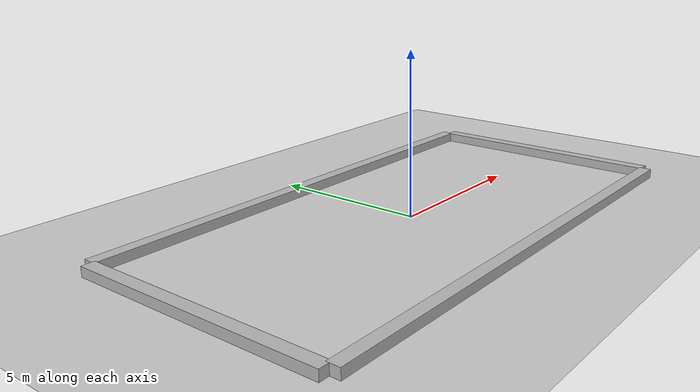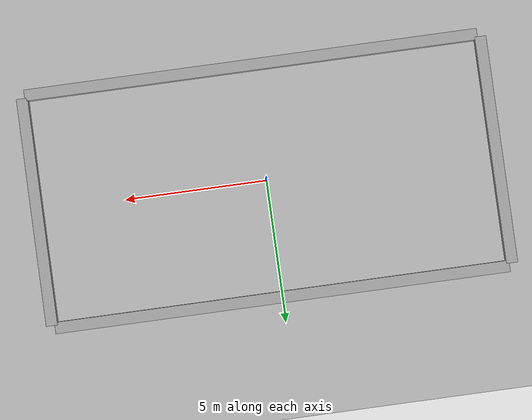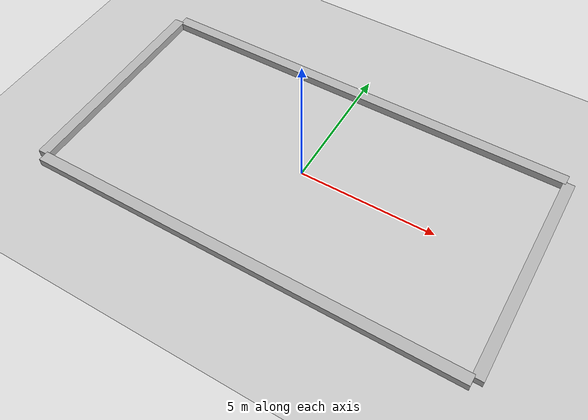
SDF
<?xml version="1.0" ?>
<sdf version="1.9">
  <world name="default">
    <physics name="1ms" type="ignored">
      <max_step_size>0.001</max_step_size>
      <real_time_factor>1.0</real_time_factor>
    </physics>

    <plugin filename="gz-sim-physics-system" name="gz::sim::systems::Physics"/>
    <plugin filename="gz-sim-user-commands-system" name="gz::sim::systems::UserCommands"/>
    <plugin filename="gz-sim-scene-broadcaster-system" name="gz::sim::systems::SceneBroadcaster"/>
    <plugin filename="gz-sim-sensors-system" name="gz::sim::systems::Sensors">
      <render_engine>ogre2</render_engine>
    </plugin>

    <light name="sun" type="directional">
      <cast_shadows>true</cast_shadows>
      <pose>0 0 10 0 0 0</pose>
      <diffuse>0.8 0.8 0.8 1</diffuse>
      <specular>0.2 0.2 0.2 1</specular>
      <direction>-0.5 0.1 -0.9</direction>
    </light>

    <model name="ground_plane">
      <static>true</static>
      <link name="link">
        <collision name="collision">
          <geometry>
            <plane>
              <normal>0 0 1</normal>
              <size>100 100</size>
            </plane>
          </geometry>
        </collision>
        <visual name="visual">
          <geometry>
            <plane>
              <normal>0 0 1</normal>
              <size>100 100</size>
            </plane>
          </geometry>
          <material>
            <ambient>0.5 0.5 0.5 1</ambient>
            <diffuse>0.8 0.8 0.8 1</diffuse>
          </material>
        </visual>
      </link>
    </model>

    <!-- Mustard bottles (spawned at world load) -->

    <!-- ===== Obstacles from arena_layout.yaml ===== -->
    <model name="wall_top">
      <static>true</static>
      <pose>0.0 4.1 0.15 0 0 0</pose> <!-- center: x=-8+16/2=0, y=3.9+0.4/2=4.1 -->
      <link name="link">
        <collision name="col">
          <geometry><box><size>16.0 0.4 0.3</size></box></geometry>
        </collision>
        <visual name="vis">
          <geometry><box><size>16.0 0.4 0.3</size></box></geometry>
        </visual>
      </link>
    </model>

    <model name="wall_bottom">
      <static>true</static>
      <pose>0.0 -4.1 0.15 0 0 0</pose>
      <link name="link">
        <collision name="col">
          <geometry><box><size>16.0 0.4 0.3</size></box></geometry>
        </collision>
        <visual name="vis">
          <geometry><box><size>16.0 0.4 0.3</size></box></geometry>
        </visual>
      </link>
    </model>

    <model name="wall_left">
      <static>true</static>
      <pose>-8.1 0.0 0.15 0 0 0</pose>
      <link name="link">
        <collision name="col">
          <geometry><box><size>0.4 8.0 0.3</size></box></geometry>
        </collision>
        <visual name="vis">
          <geometry><box><size>0.4 8.0 0.3</size></box></geometry>
        </visual>
      </link>
    </model>

    <model name="wall_right">
      <static>true</static>
      <pose>8.1 0.0 0.15 0 0 0</pose>
      <link name="link">
        <collision name="col">
          <geometry><box><size>0.4 8.0 0.3</size></box></geometry>
        </collision>
        <visual name="vis">
          <geometry><box><size>0.4 8.0 0.3</size></box></geometry>
        </visual>
      </link>
    </model>

  </world>
</sdf>
